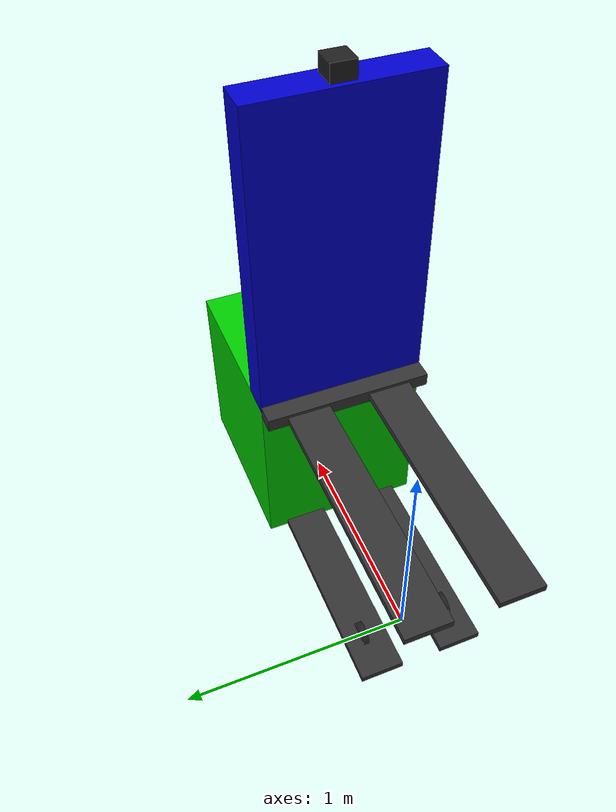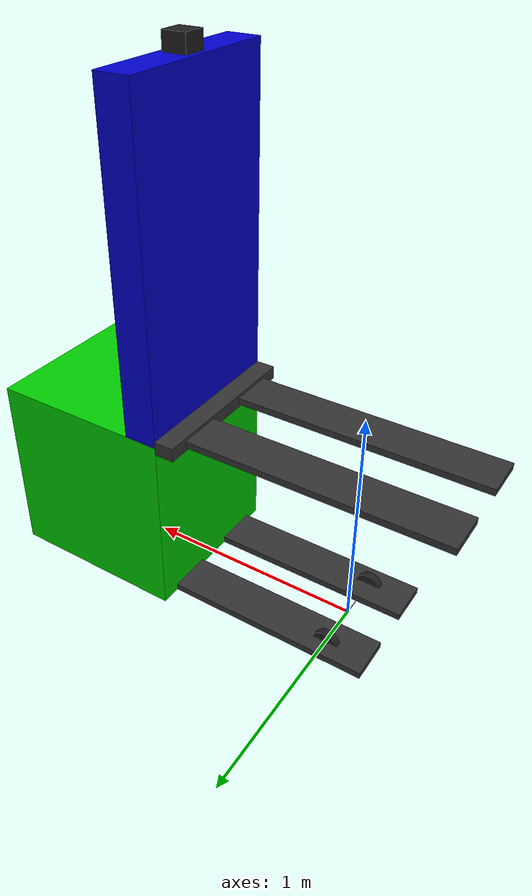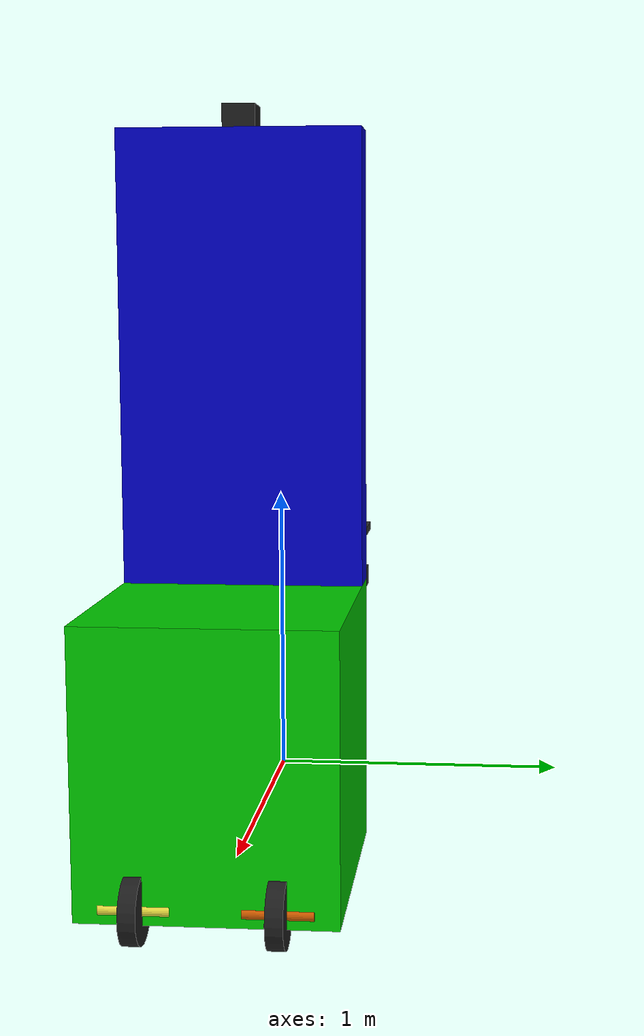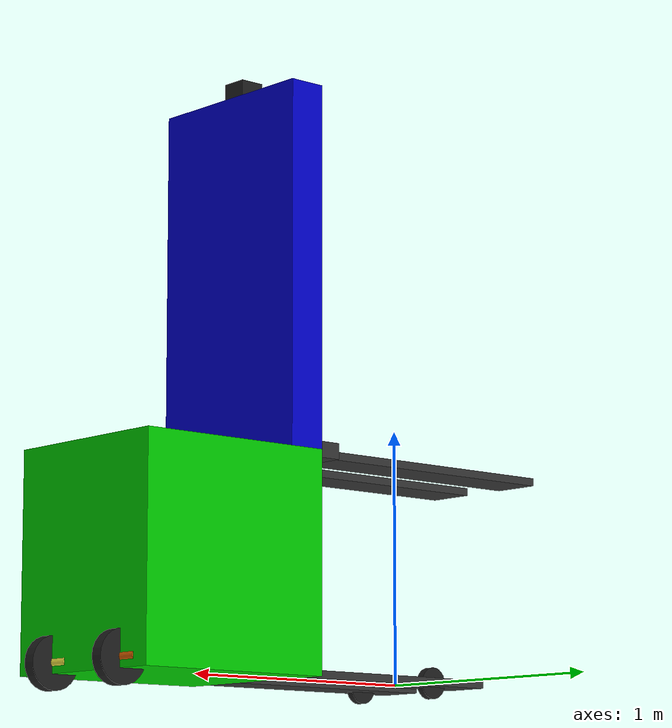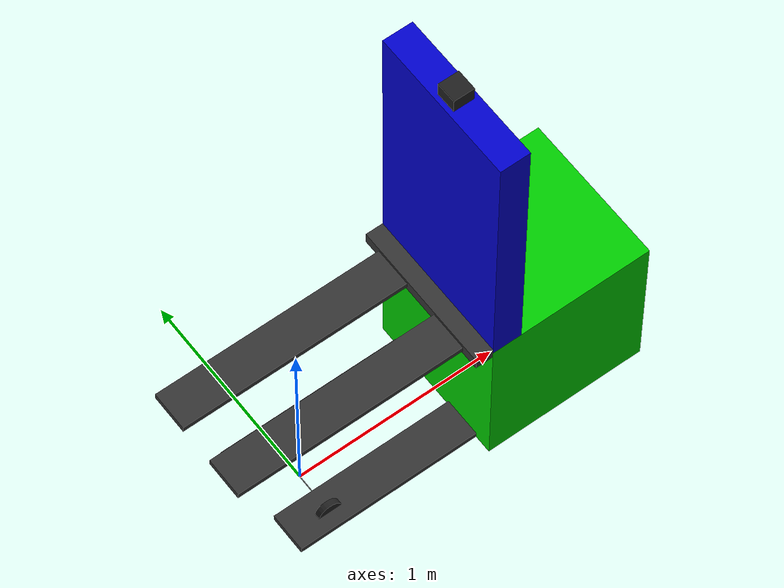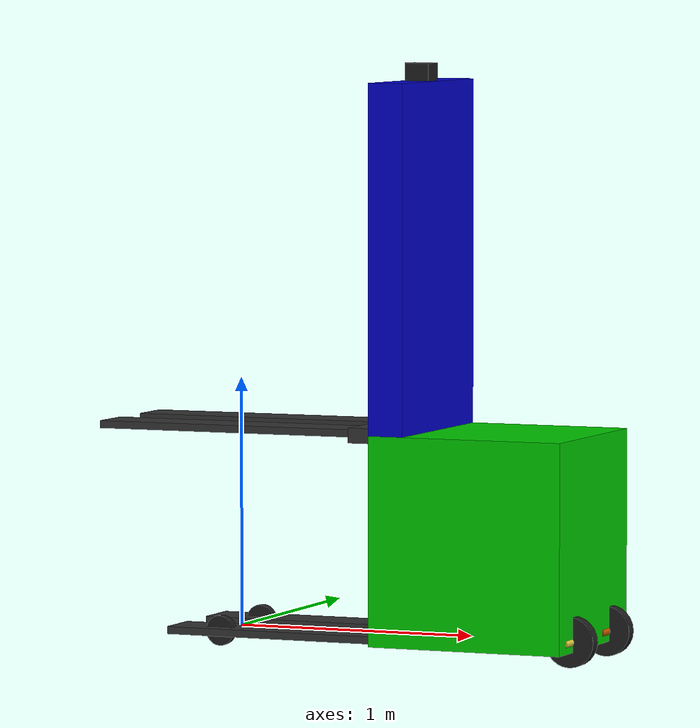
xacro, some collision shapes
<?xml version="1.0"?>
<robot name="frankenstein"  xmlns:xacro="https://www.ros.org/wiki/xacro">

  <xacro:include filename="$(find frankenstein_description)/urdf/materials.xacro"/>
  <xacro:include filename="$(find frankenstein_description)/urdf/frankenstein.gazebo"/>

    <link name="robot_frame"/>

    <link name="base_link">
        <selfCollide>false</selfCollide>
        <collision name="collision">
            <geometry>
            <cylinder length="0.5" radius="0.002"/>
            </geometry>
        </collision>
        <visual>
            <geometry>
            <cylinder length="0.5" radius="0.002"/>
            </geometry>
            <material name="black"/>
        </visual>
        <inertial>
            <origin xyz="0 0 0" />
            <mass value="0.1"/>
            <inertia ixx="0.002083" ixy="0.0" ixz="0.0"
                    iyy="0.002083" iyz="0.0"
                    izz="2e-7"/>
        </inertial>
    </link>

    <joint name="base_to_robot_frame" type="fixed">
        <parent link="robot_frame"/>
        <child link="base_link"/>
        <origin xyz="0 0 0" rpy="-${pi/2} 0 ${pi}"/>
    </joint>

    <link name="leg1">
        <selfCollide>false</selfCollide>
        <collision name="collision">
            <geometry>
            <box size="0.909 0.192 0.03"/>
            </geometry>
        </collision>
        <visual>
            <geometry>
            <box size="0.909 0.192 0.03"/>
            </geometry>
            <material name="grey"/>
        </visual>
        <inertial>
            <origin xyz="0 0 0" />
            <mass value="0.14"/>
            <inertia ixx="0.000441" ixy="0.0" ixz="0.0"
                    iyy="0.00965" iyz="0.0"
                    izz="0.01007"/>
        </inertial>

    </link>

    <joint name="leg1_baselink" type="fixed">
        <parent link="base_link"/>
        <child link="leg1"/>
        <origin xyz="-0.2545 0 -0.187" rpy="${pi/2} 0 0"/>

    </joint>

    <link name="leg2">
        <selfCollide>false</selfCollide>
        <collision name="collision">
            <geometry>
            <box size="0.909 0.192 0.03"/>
            </geometry>
        </collision>
        <visual>
            <geometry>
            <box size="0.909 0.192 0.03"/>
            </geometry>
            <material name="grey"/>
        </visual>
        <inertial>
            <origin xyz="0 0 0" />
            <mass value="0.14"/>
            <inertia ixx="0.000441" ixy="0.0" ixz="0.0"
                    iyy="0.00965" iyz="0.0"
                    izz="0.01007"/>
        </inertial>

    </link>

    <joint name="leg2_baselink" type="fixed">
    <parent link="base_link"/>
    <child link="leg2"/>
    <origin xyz="-0.2545 0 0.187" rpy="${pi/2} 0 0"/>
    </joint>

    <link name="chassis">
        <selfCollide>false</selfCollide>
        <collision name="collision">
            <geometry>
            <box size="0.806 0.742 0.831995"/>
            </geometry>
        </collision>
        <visual>
            <geometry>
            <box size="0.806 0.742 0.831995"/>
            </geometry>
            <material name="green"/>
        </visual>
        <inertial>
            <origin xyz="0 0 0" />
            <mass value="1.5" />
            <inertia ixx="0.155" ixy="0.0" ixz="0.0"
                    iyy="0.168" iyz="0.0"
                    izz="0.150"/>
        </inertial>

    </link>

    <joint name="leg1_to_chassis" type="fixed">
        <parent link="leg1"/>
        <child link="chassis"/>
        <origin xyz="-0.8575 0.187 0.4009975" rpy="0 0 0"/>
    </joint>

    <link name="left_free_steering_column">
        <selfCollide>false</selfCollide>
        <collision name="collision">
            <geometry>
            <cylinder radius="0.02" length="0.2"/>
            </geometry>
        </collision>
        <visual>
            <origin xyz="0 0 0" rpy="0 0 0"/>
            <geometry>
            <cylinder radius="0.02" length="0.2"/>
            </geometry>
        </visual>
        <inertial>
            <origin xyz="0 0 0" />
            <mass value="1.0"/>
            <inertia ixx="0.020858" ixy="0.0" ixz="0.0"
                    iyy="0.020858" iyz="0.0"
                    izz="0.00005" />
        </inertial>
    </link>

    <joint name="left_free_steering_joint" type="continuous">
        <parent link="chassis"/>
        <child link="left_free_steering_column"/>
        <origin xyz="-0.388 -0.2 -0.3759975" rpy="${pi/2} 0 0"/>
        <axis xyz="0 1 0"/>
    </joint>

    <link name="left_free_wheel">
        <selfCollide>false</selfCollide>
        <collision name="collision">
            <geometry>
            <cylinder radius="0.1" length="0.05"/>
            </geometry>
        </collision>
        <visual>
            <origin xyz="0 0 0" rpy="0 0 0"/>
            <geometry>
            <cylinder radius="0.1" length="0.05"/>
            </geometry>
        </visual>
        <inertial>
            <origin xyz="0 0 0" />
            <mass value="2.8498940e-01" />
            <inertia ixx="0.000734" ixy="0.0" ixz="0.0"
                     iyy="0.000734" iyz="0.0"
                     izz="0.001425"/>
        </inertial>
    </link>

    <joint name="left_free_joint" type="continuous">
        <parent link="left_free_steering_column"/>
        <child link="left_free_wheel"/>
        <origin xyz="0 0 0" rpy="0 0 0"/>
        <axis xyz="0 0 1"/>
    </joint>

    <link name="rod">
        <selfCollide>false</selfCollide>
        <collision name="collision">
            <geometry>
            <box size="0.145 0.742 1.383136"/>
            </geometry>
        </collision>
        <visual>
            <geometry>
            <box size="0.145 0.742 1.383136"/>
            </geometry>
            <material name="blue"/>
        </visual>
        <inertial>
            <origin xyz="0 0 0" />
            <mass value="0.4" />
            <inertia ixx="0.054747" ixy="0.0" ixz="0.0"
                    iyy="0.042980" iyz="0.0"
                    izz="0.012702" />
        </inertial>
    </link>

    <joint name="rod_to_chassis" type="fixed">
        <parent link="chassis"/>
        <child link="rod"/>
        <origin xyz="0.3305 0 1.1075655" rpy="0 0 0"/>
    </joint>

    <link name="slider">
        <selfCollide>false</selfCollide>
        <collision name="collision">
            <geometry>
            <box size="0.0856 0.742 0.06"/>
            </geometry>
        </collision>
        <visual>
            <geometry>
            <box size="0.0856 0.742 0.06"/>
            </geometry>
            <material name="grey"/>
        </visual>
        <inertial>
            <origin xyz="0 0 0" />
            <mass value="0.1" />
            <inertia ixx="0.003079" ixy="0.0" ixz="0.0"
                    iyy="0.000061" iyz="0.0"
                    izz="0.003099" />
        </inertial>
    </link>

    <joint name="slider_to_chassis" type="fixed">
        <parent link="chassis"/>
        <child link="slider"/>
        <origin xyz="0.4458 0 0.4159975" rpy="0 0 0"/>
    </joint>

    <link name="holder1">
        <selfCollide>false</selfCollide>
        <collision name="collision">
            <geometry>
            <box size="1.160349 0.192 0.03"/>
            </geometry>
        </collision>
        <visual>
            <geometry>
            <box size="1.160349 0.192 0.03"/>
            </geometry>
            <material name="grey"/>
        </visual>
        <inertial>
            <origin xyz="0 0 0" />
            <mass value="0.05"/>
            <inertia ixx="0.00015735" ixy="0.0" ixz="0.0"
                    iyy="0.005614" iyz="0.0"
                    izz="0.005764"/>
        </inertial>
    </link>

    <joint name="holder1_to_slider" type="fixed">
        <parent link="slider"/>
        <child link="holder1"/>
        <origin xyz="0.5801745 -0.187 0" rpy="0 0 0"/>
    </joint>

    <link name="holder2">
        <selfCollide>false</selfCollide>
        <collision name="collision">
            <geometry>
            <box size="1.160349 0.192 0.03"/>
            </geometry>
        </collision>
        <visual>
            <geometry>
            <box size="1.160349 0.192 0.03"/>
            </geometry>
            <material name="grey"/>
        </visual>
        <inertial>
            <origin xyz="0 0 0" />
            <mass value="0.05"/>
            <inertia ixx="0.00015735" ixy="0.0" ixz="0.0"
                    iyy="0.005614" iyz="0.0"
                    izz="0.005764"/>
        </inertial>
    </link>

    <joint name="holder2_to_slider" type="fixed">
        <parent link="slider"/>
        <child link="holder2"/>
        <origin xyz="0.5801745 0.187 0" rpy="0 0 0"/>
    </joint>

    <link name="front_right_steering_column">
        <selfCollide>false</selfCollide>
        <collision name="collision">
            <geometry>
            <cylinder radius="0.02" length="0.2"/>
            </geometry>
        </collision>
        <visual>
            <origin xyz="0 0 0" rpy="0 0 0"/>
            <geometry>
            <cylinder radius="0.02" length="0.2"/>
            </geometry>
        </visual>
        <inertial>
            <origin xyz="0 0 0" />
            <mass value="1.0"/>
            <inertia ixx="0.020858" ixy="0.0" ixz="0.0"
                    iyy="0.020858" iyz="0.0"
                    izz="0.00005" />
        </inertial>
    </link>

    <joint name="front_right_steering_joint" type="revolute">
        <parent link="chassis"/>
        <child link="front_right_steering_column"/>
        <origin xyz="-0.388 0.2 -0.3759975" rpy="${pi/2} 0 0"/>
        <axis xyz="0 1 0"/>
        <limit lower="-${pi/4}" upper="${pi/4}" effort="100" velocity="10"/>
    </joint>

    <link name="front_right_wheel">
        <selfCollide>false</selfCollide>
        <collision name="collision">
            <geometry>
            <cylinder radius="0.1" length="0.05"/>
            </geometry>
        </collision>
        <visual>
            <origin xyz="0 0 0" rpy="0 0 0"/>
            <geometry>
            <cylinder radius="0.1" length="0.05"/>
            </geometry>
        </visual>
        <inertial>
            <origin xyz="0 0 0" />
            <mass value="2.8498940e-01" />
            <inertia ixx="0.000734" ixy="0.0" ixz="0.0"
                     iyy="0.000734" iyz="0.0"
                     izz="0.001425"/>
        </inertial>
    </link>

    <joint name="front_right_wheel_joint" type="continuous">
        <parent link="front_right_steering_column"/>
        <child link="front_right_wheel"/>
        <origin xyz="0 0 0" rpy="0 0 0"/>
        <axis xyz="0 0 1"/>
    </joint>

    <link name="back_right_wheel">
        <selfCollide>false</selfCollide>
        <collision name="collision">
            <geometry>
            <cylinder radius="0.06" length="0.03"/>
            </geometry>
        </collision>
        <visual>
            <origin xyz="0 0 0" rpy="0 0 0"/>
            <geometry>
            <cylinder radius="0.06" length="0.03"/>
            </geometry>
        </visual>
        <inertial>
            <origin xyz="0 0 0" />
            <mass value="0.05"/>
            <inertia ixx="4.875e-05" ixy="0.0" ixz="0.0"
                    iyy="4.875e-05" iyz="0.0"
                    izz="9e-05"/>
        </inertial>
    </link>

    <joint name="back_right_wheel_roll_joint" type="continuous">
        <parent link="base_link"/>
        <child link="back_right_wheel"/>
        <origin xyz="0 0 0.2" rpy="0 0 ${pi/2}"/>
        <axis xyz="0 0 1"/>
    </joint>

    <link name="back_left_wheel">
        <selfCollide>false</selfCollide>
        <collision name="collision">
            <geometry>
            <cylinder radius="0.06" length="0.03"/>
            </geometry>
        </collision>
        <visual>
            <origin xyz="0 0 0" rpy="0 0 0"/>
            <geometry>
            <cylinder radius="0.06" length="0.03"/>
            </geometry>
        </visual>
        <inertial>
            <origin xyz="0 0 0" />
            <mass value="0.05"/>
            <inertia ixx="4.875e-05" ixy="0.0" ixz="0.0"
                    iyy="4.875e-05" iyz="0.0"
                    izz="9e-05"/>
        </inertial>
    </link>

    <joint name="back_left_wheel_roll_joint" type="continuous">
        <parent link="base_link"/>
        <child link="back_left_wheel"/>
        <origin xyz="0 0 -0.2" rpy="0 0 ${pi/2}"/>
        <axis xyz="0 0 1"/>
    </joint>

    <link name="lidar_link">
        <selfCollide>false</selfCollide>
        <collision name="collision">
        <geometry>
            <box size="0.1 0.1 0.135"/>
        </geometry>
        </collision>
        <visual>
            <origin xyz="0 0 0" rpy="0 0 0"/>
            <geometry>
                <mesh filename="package://frankenstein_description/meshes/sick_s300.dae"/>
            </geometry>
        </visual>
        <inertial>
            <origin xyz="0 0 0" />
            <mass value="0.2" />
            <inertia ixx="0.000470" ixy="0.0" ixz="0.0"
                    iyy="0.000470" iyz="0.0"
                    izz="0.000333" />
        </inertial>
    </link>

    <joint name="lidar_to_rod" type="fixed">
        <parent link="rod"/>
        <child link="lidar_link"/>
        <origin xyz="0 0 0.695068" rpy="0 0 ${pi}"/>
    </joint>

</robot>

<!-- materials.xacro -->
<robot >

  <material name="black">
    <color rgba="0.0 0.0 0.0 1.0"/>
  </material>

  <material name="blue">
    <color rgba="0.0 0.0 0.8 1.0"/>
  </material>

  <material name="green">
    <color rgba="0.0 0.8 0.0 1.0"/>
  </material>

  <material name="grey">
    <color rgba="0.2 0.2 0.2 1.0"/>
  </material>

  <material name="orange">
    <color rgba="${255/255} ${108/255} ${10/255} 1.0"/>
  </material>

  <material name="brown">
    <color rgba="${222/255} ${207/255} ${195/255} 1.0"/>
  </material>

  <material name="red">
    <color rgba="0.8 0.0 0.0 1.0"/>
  </material>

  <material name="white">
    <color rgba="1.0 1.0 1.0 1.0"/>
  </material>

  <material name="yellow">
    <color rgba="1.0 1.0 0 1.0"/>
  </material>

</robot>
